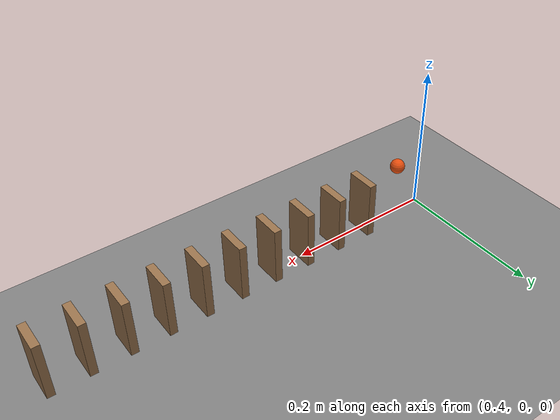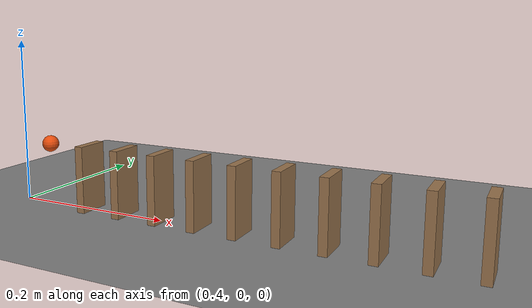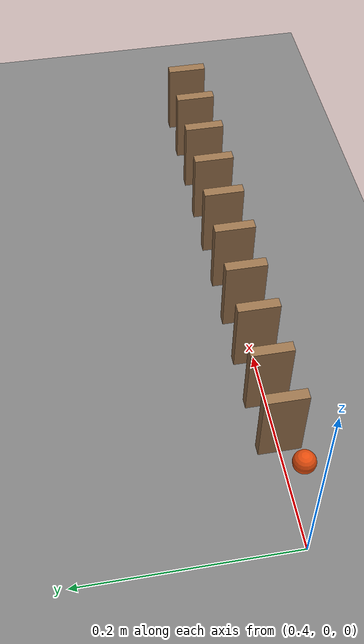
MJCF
<mujoco model="ten_dominoes">
  <compiler angle="radian"/>
  <option timestep="0.002"/>
  <worldbody>
    <geom name="floor" type="plane" size="4 4 0.1" friction="0.7 0.005 0.002"/>
    <body name="domino1" pos="0.5 0 0.04">
      <freejoint/>
      <geom name="domino1" type="box" pos="0 0 0" size="0.005 0.02 0.04" mass="0.02" friction="0.5 0.005 0.002" rgba="0.6 0.45 0.3 1"/>
    </body>
    <body name="domino2" pos="0.55 0 0.04">
      <freejoint/>
      <geom name="domino2" type="box" pos="0 0 0" size="0.005 0.02 0.04" mass="0.02" friction="0.5 0.005 0.002" rgba="0.6 0.45 0.3 1"/>
    </body>
    <body name="domino3" pos="0.6 0 0.04">
      <freejoint/>
      <geom name="domino3" type="box" pos="0 0 0" size="0.005 0.02 0.04" mass="0.02" friction="0.5 0.005 0.002" rgba="0.6 0.45 0.3 1"/>
    </body>
    <body name="domino4" pos="0.65 0 0.04">
      <freejoint/>
      <geom name="domino4" type="box" pos="0 0 0" size="0.005 0.02 0.04" mass="0.02" friction="0.5 0.005 0.002" rgba="0.6 0.45 0.3 1"/>
    </body>
    <body name="domino5" pos="0.7 0 0.04">
      <freejoint/>
      <geom name="domino5" type="box" pos="0 0 0" size="0.005 0.02 0.04" mass="0.02" friction="0.5 0.005 0.002" rgba="0.6 0.45 0.3 1"/>
    </body>
    <body name="domino6" pos="0.75 0 0.04">
      <freejoint/>
      <geom name="domino6" type="box" pos="0 0 0" size="0.005 0.02 0.04" mass="0.02" friction="0.5 0.005 0.002" rgba="0.6 0.45 0.3 1"/>
    </body>
    <body name="domino7" pos="0.8 0 0.04">
      <freejoint/>
      <geom name="domino7" type="box" pos="0 0 0" size="0.005 0.02 0.04" mass="0.02" friction="0.5 0.005 0.002" rgba="0.6 0.45 0.3 1"/>
    </body>
    <body name="domino8" pos="0.85 0 0.04">
      <freejoint/>
      <geom name="domino8" type="box" pos="0 0 0" size="0.005 0.02 0.04" mass="0.02" friction="0.5 0.005 0.002" rgba="0.6 0.45 0.3 1"/>
    </body>
    <body name="domino9" pos="0.9 0 0.04">
      <freejoint/>
      <geom name="domino9" type="box" pos="0 0 0" size="0.005 0.02 0.04" mass="0.02" friction="0.5 0.005 0.002" rgba="0.6 0.45 0.3 1"/>
    </body>
    <body name="domino10" pos="0.95 0 0.04">
      <freejoint/>
      <geom name="domino10" type="box" pos="0 0 0" size="0.005 0.02 0.04" mass="0.02" friction="0.5 0.005 0.002" rgba="0.6 0.45 0.3 1"/>
    </body>
    <body name="pusher" pos="0.44 0 0.075">
      <freejoint/>
      <geom name="pusher" type="sphere" pos="0 0 0" size="0.01" mass="0.012" rgba="0.9 0.3 0.05 1"/>
    </body>
  </worldbody>
  <keyframe>
    <key name="start" qpos="0.5 0 0.04 1 0 0 0 0.55 0 0.04 1 0 0 0 0.6 0 0.04 1 0 0 0 0.65 0 0.04 1 0 0 0 0.7 0 0.04 1 0 0 0 0.75 0 0.04 1 0 0 0 0.8 0 0.04 1 0 0 0 0.85 0 0.04 1 0 0 0 0.9 0 0.04 1 0 0 0 0.95 0 0.04 1 0 0 0 0.44 0 0.075 1 0 0 0" qvel="0 0 0 0 5 0 0 0 0 0 0 0 0 0 0 0 0 0 0 0 0 0 0 0 0 0 0 0 0 0 0 0 0 0 0 0 0 0 0 0 0 0 0 0 0 0 0 0 0 0 0 0 0 0 0 0 0 0 0 0 1.2 0 0 0 0 0"/>
  </keyframe>
</mujoco>
